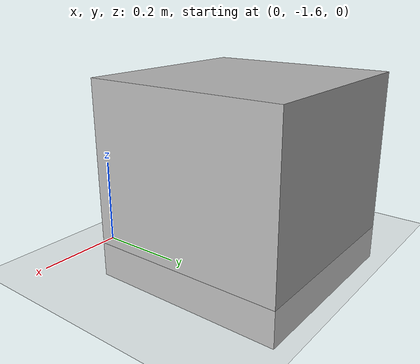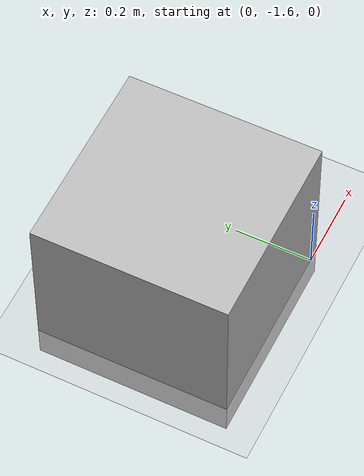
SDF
<?xml version='1.0'?>
<sdf version="1.4">
  <world name="default">
    <physics type="ode">
      <gravity>0 0 -9.81</gravity>
      <ode>
        <solver>
          <type>quick</type>
          <iters>20</iters>
          <sor>1.0</sor>
        </solver>
        <constraints>
          <cfm>0.0</cfm>
          <erp>0.2</erp>
          <contact_max_correcting_vel>100.0</contact_max_correcting_vel>
          <contact_surface_layer>0.0</contact_surface_layer>
        </constraints>
      </ode>
      <real_time_update_rate>1000</real_time_update_rate>
      <max_step_size>0.001</max_step_size>
    </physics>

    <include>
      <uri>/home/lab/catkin_ws/src/rqt_mlp/src/rqt_mlp/Scenarios/Extentions/models/box</uri>
      <name>box</name>
      <pose>-0.218060488571 -1.34874529915 -0.34 0 0 0</pose>
    </include>
    <include>
      <uri>model://sun</uri>
    </include>

    <include>
      <uri>model://ground_plane</uri>
    </include>
  </world>
</sdf>

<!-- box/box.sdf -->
<sdf version="1.4">
  <model name="box">
    <static>0</static>
          <link name="box">
            <pose>0 0 .5 0 0 0</pose>
            <collision name="collision">
              <geometry>
                <box>
                  <size>0.5 0.5 0.5</size>
                </box>
              </geometry>
            </collision>

            <visual name="visual">
              <geometry>
                <box>
                  <size>0.5 0.5 0.5</size>
                </box>
              </geometry>
	<material>
          <script>
	      <uri>/home/lab/catkin_ws/src/rqt_mlp/src/rqt_mlp/Scenarios/Extentions/models/box/material/scripts</uri>
	      <uri>/home/lab/catkin_ws/src/rqt_mlp/src/rqt_mlp/Scenarios/Extentions/models/box/material/textures</uri>
              <name>Custom/box</name>
          </script>
        </material>

            </visual>
          </link>
  </model>
</sdf>
